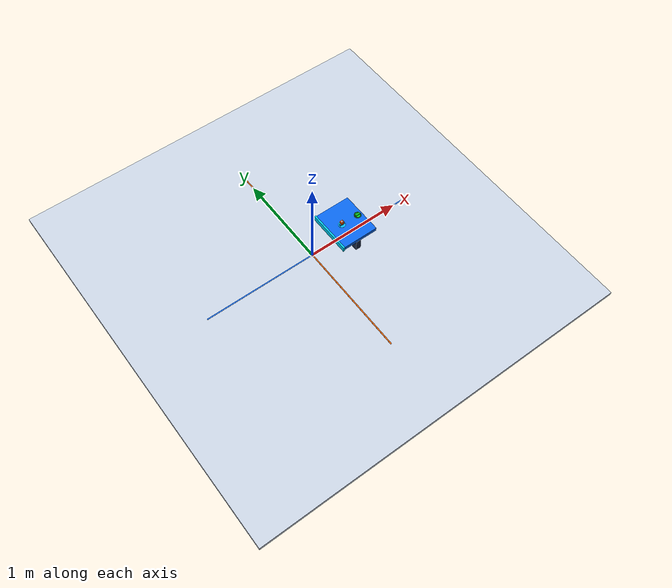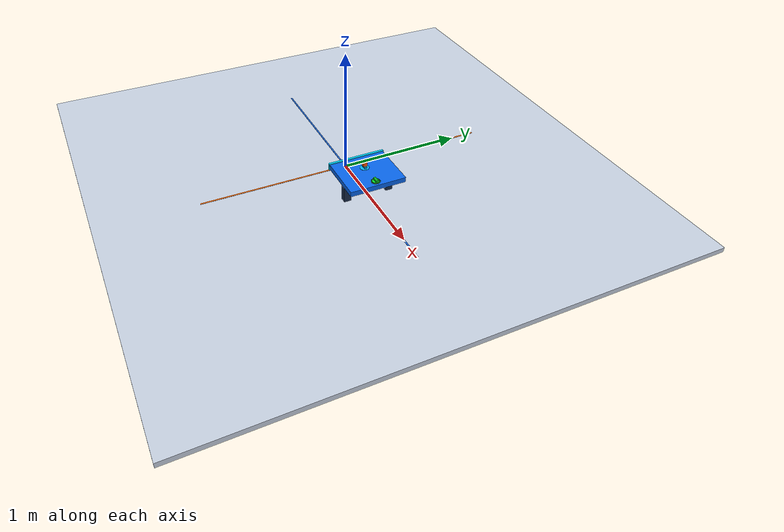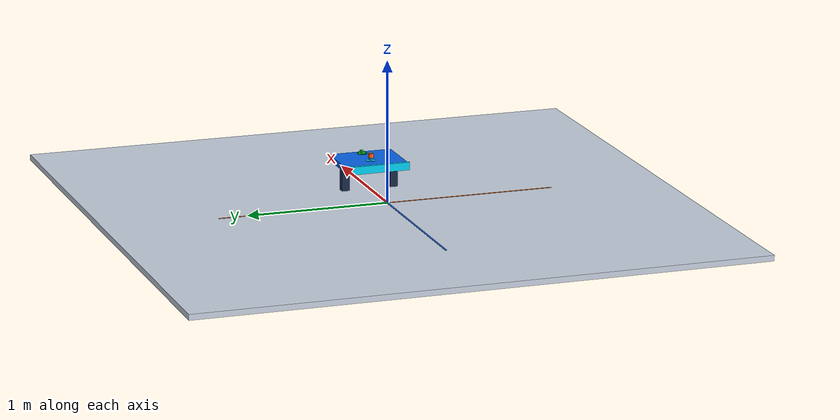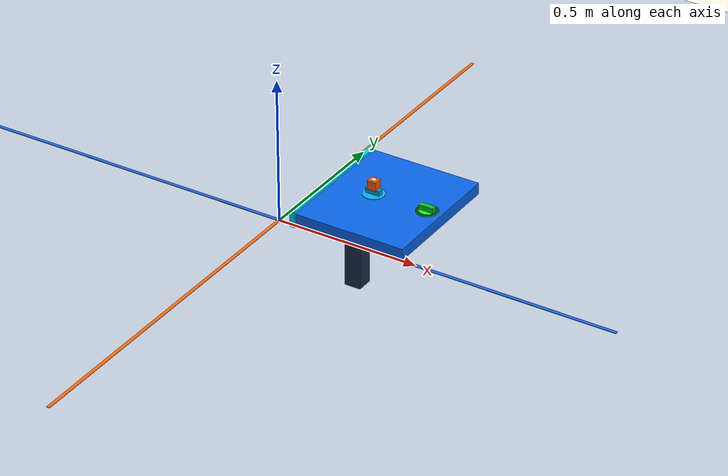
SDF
<?xml version="1.0"?>
<sdf version="1.8">
  <world name="robomaster_world">
    <!-- Bright neutral lighting prevents untextured URDF and SDF visuals from
         collapsing to black on the Jetson / Ogre2 renderer. -->
    <scene>
      <ambient>0.68 0.72 0.80 1</ambient>
      <background>0.36 0.56 0.80 1</background>
      <shadows>true</shadows>
    </scene>
    <physics name="stable_1khz" type="ignored">
      <max_step_size>0.001</max_step_size>
      <real_time_factor>1.0</real_time_factor>
    </physics>
    <plugin filename="ignition-gazebo-physics-system" name="ignition::gazebo::systems::Physics"/>
    <plugin filename="ignition-gazebo-user-commands-system" name="ignition::gazebo::systems::UserCommands"/>
    <plugin filename="ignition-gazebo-scene-broadcaster-system" name="ignition::gazebo::systems::SceneBroadcaster"/>

    <light name="sun" type="directional">
      <pose>0 0 10 0 0 0</pose>
      <diffuse>0.98 0.96 0.91 1</diffuse>
      <specular>0.30 0.30 0.30 1</specular>
      <direction>-0.45 0.25 -1</direction>
      <cast_shadows>true</cast_shadows>
    </light>
    <light name="fill_light" type="point">
      <pose>0.2 -1.2 1.8 0 0 0</pose>
      <diffuse>0.55 0.68 0.90 1</diffuse>
      <specular>0.12 0.15 0.20 1</specular>
      <attenuation><range>5</range><constant>0.7</constant><linear>0.12</linear><quadratic>0.02</quadratic></attenuation>
      <cast_shadows>false</cast_shadows>
    </light>

    <model name="ground">
      <static>true</static>
      <link name="link">
        <pose>0 0 -0.02 0 0 0</pose>
        <collision name="collision">
          <geometry><box><size>4 4 0.04</size></box></geometry>
          <surface><friction><ode><mu>1.0</mu><mu2>1.0</mu2></ode></friction></surface>
        </collision>
        <visual name="floor">
          <geometry><box><size>4 4 0.04</size></box></geometry>
          <material><ambient>0.70 0.75 0.82 1</ambient><diffuse>0.78 0.82 0.88 1</diffuse><specular>0.12 0.14 0.18 1</specular></material>
        </visual>
        <!-- Simple axes give scale and orientation without texture dependencies. -->
        <visual name="x_axis"><pose>0 0 0.021 0 0 0</pose><geometry><box><size>2.4 0.012 0.002</size></box></geometry><material><ambient>0.10 0.42 0.90 1</ambient><diffuse>0.10 0.42 0.90 1</diffuse><emissive>0.02 0.08 0.18 1</emissive></material></visual>
        <visual name="y_axis"><pose>0 0 0.021 0 0 0</pose><geometry><box><size>0.012 2.4 0.002</size></box></geometry><material><ambient>0.96 0.42 0.05 1</ambient><diffuse>0.96 0.42 0.05 1</diffuse><emissive>0.16 0.05 0.01 1</emissive></material></visual>
      </link>
    </model>

    <model name="table">
      <static>true</static>
      <link name="table_link">
        <collision name="top_collision"><pose>0.40 0 0.19 0 0 0</pose><geometry><box><size>0.38 0.45 0.04</size></box></geometry></collision>
        <visual name="top"><pose>0.40 0 0.19 0 0 0</pose><geometry><box><size>0.38 0.45 0.04</size></box></geometry><material><ambient>0.025 0.25 0.62 1</ambient><diffuse>0.035 0.40 0.92 1</diffuse><specular>0.38 0.48 0.68 1</specular></material></visual>
        <visual name="front_edge"><pose>0.202 0 0.19 0 0 0</pose><geometry><box><size>0.018 0.46 0.055</size></box></geometry><material><ambient>0.00 0.78 0.92 1</ambient><diffuse>0.00 0.82 0.96 1</diffuse><emissive>0.00 0.10 0.13 1</emissive></material></visual>
        <collision name="left_leg_collision"><pose>0.40 0.175 0.085 0 0 0</pose><geometry><box><size>0.055 0.055 0.17</size></box></geometry></collision>
        <collision name="right_leg_collision"><pose>0.40 -0.175 0.085 0 0 0</pose><geometry><box><size>0.055 0.055 0.17</size></box></geometry></collision>
        <visual name="left_leg"><pose>0.40 0.175 0.085 0 0 0</pose><geometry><box><size>0.055 0.055 0.17</size></box></geometry><material><ambient>0.06 0.10 0.19 1</ambient><diffuse>0.09 0.16 0.28 1</diffuse><specular>0.25 0.28 0.34 1</specular></material></visual>
        <visual name="right_leg"><pose>0.40 -0.175 0.085 0 0 0</pose><geometry><box><size>0.055 0.055 0.17</size></box></geometry><material><ambient>0.06 0.10 0.19 1</ambient><diffuse>0.09 0.16 0.28 1</diffuse><specular>0.25 0.28 0.34 1</specular></material></visual>
      </link>
    </model>

    <model name="pick_cube">
      <pose>0.350 0 0.245 0 0 0</pose>
      <static>true</static>
      <link name="link">
        <visual name="orange_cube"><geometry><box><size>0.03 0.03 0.03</size></box></geometry><material><ambient>1.00 0.18 0.01 1</ambient><diffuse>1.00 0.34 0.015 1</diffuse><specular>0.75 0.42 0.12 1</specular><emissive>0.12 0.018 0 1</emissive></material></visual>
        <visual name="cube_marker"><pose>0 0 0.0155 0 0 0</pose><geometry><cylinder><radius>0.008</radius><length>0.0015</length></cylinder></geometry><material><ambient>1 1 1 1</ambient><diffuse>1 1 1 1</diffuse><emissive>0.12 0.12 0.12 1</emissive></material></visual>
      </link>
    </model>

    <!-- Slotted stations: 50 mm of support in X keeps the 30 mm cube level,
         while the 18 mm Y width leaves clearance for the opposing fingers. -->
    <model name="pickup_station">
      <static>true</static>
      <pose>0.350 0 0.211 0 0 0</pose>
      <link name="link">
        <visual name="pickup_ring"><geometry><cylinder><radius>0.036</radius><length>0.002</length></cylinder></geometry><material><ambient>0.00 0.34 0.48 1</ambient><diffuse>0.00 0.72 0.96 1</diffuse><emissive>0.00 0.16 0.24 1</emissive></material></visual>
        <collision name="pickup_pad_collision"><pose>0 0 0.009 0 0 0</pose><geometry><box><size>0.050 0.018 0.020</size></box></geometry></collision>
        <visual name="pickup_pad"><pose>0 0 0.009 0 0 0</pose><geometry><box><size>0.050 0.018 0.020</size></box></geometry><material><ambient>0.02 0.28 0.42 1</ambient><diffuse>0.02 0.62 0.86 1</diffuse><specular>0.25 0.50 0.62 1</specular></material></visual>
      </link>
    </model>

    <model name="place_station">
      <static>true</static>
      <pose>0.540 0 0.211 0 0 0</pose>
      <link name="link">
        <visual name="target_outer"><geometry><cylinder><radius>0.036</radius><length>0.002</length></cylinder></geometry><material><ambient>0.01 0.20 0.05 1</ambient><diffuse>0.01 0.28 0.07 1</diffuse><emissive>0.00 0.05 0.01 1</emissive></material></visual>
        <visual name="target_inner"><pose>0 0 0.0015 0 0 0</pose><geometry><cylinder><radius>0.027</radius><length>0.002</length></cylinder></geometry><material><ambient>0.02 1.00 0.16 1</ambient><diffuse>0.02 1.00 0.16 1</diffuse><emissive>0.01 0.28 0.04 1</emissive></material></visual>
        <collision name="place_pad_collision"><pose>0 0 0.009 0 0 0</pose><geometry><box><size>0.050 0.018 0.020</size></box></geometry></collision>
        <visual name="place_pad"><pose>0 0 0.009 0 0 0</pose><geometry><box><size>0.050 0.018 0.020</size></box></geometry><material><ambient>0.03 0.30 0.08 1</ambient><diffuse>0.04 0.74 0.13 1</diffuse><specular>0.24 0.48 0.22 1</specular></material></visual>
      </link>
    </model>
  </world>
</sdf>
